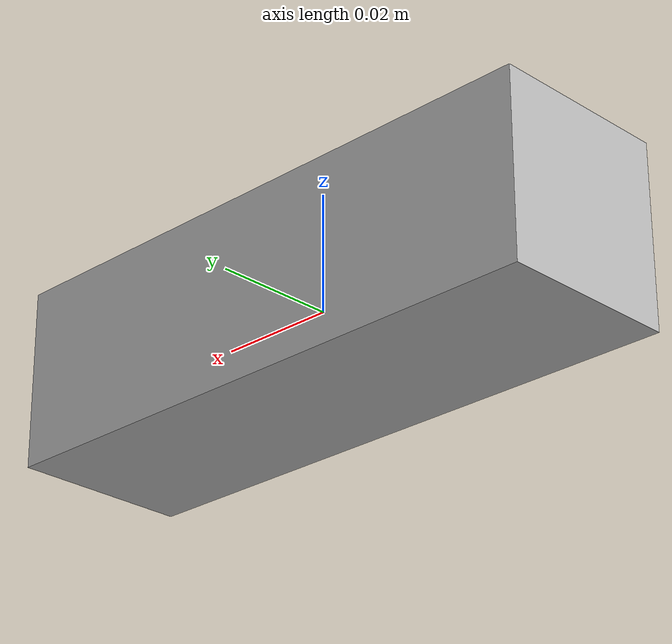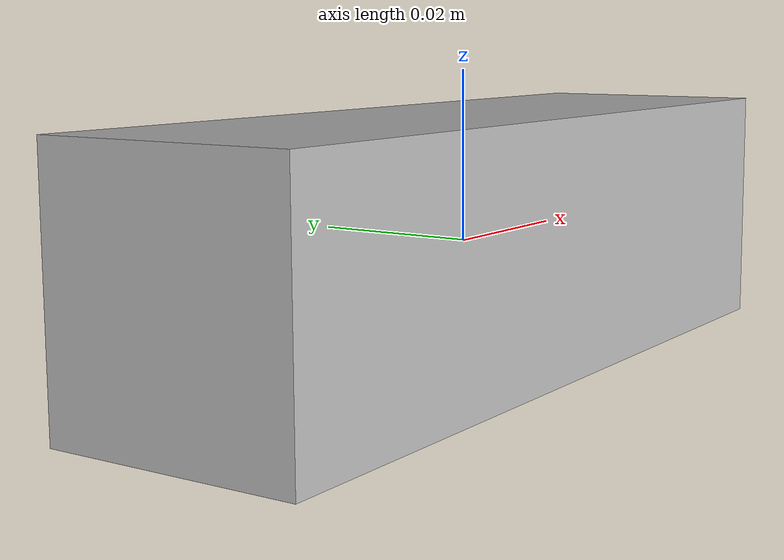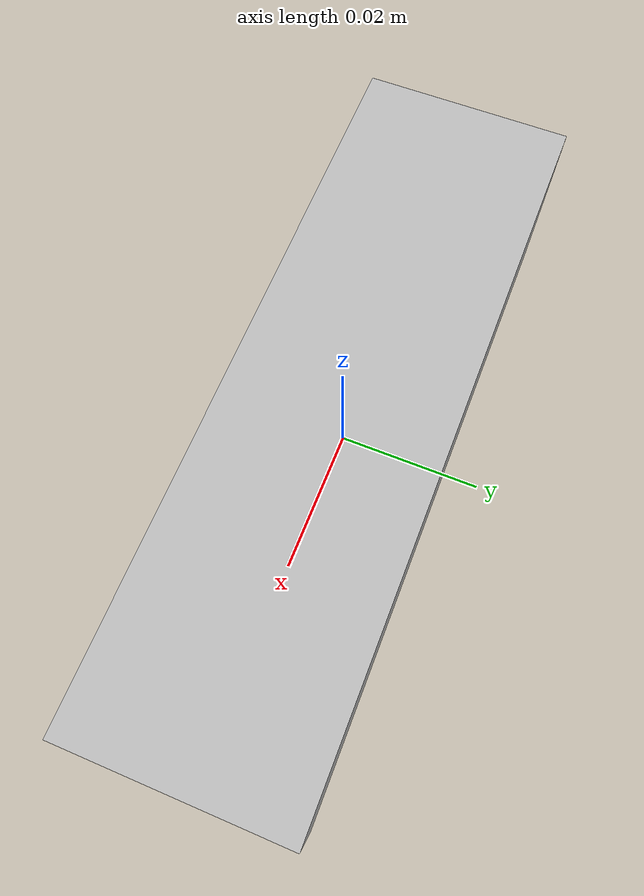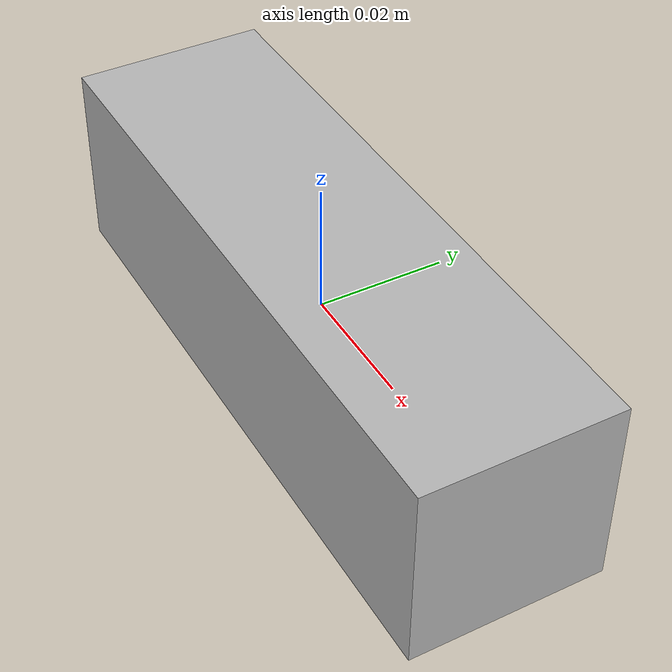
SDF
<?xml version="1.0" ?>
<sdf version="1.6">
  <model name="bumblebee2_like_model">
    <pose>0 0 0 0 0 0</pose>
    <static>true</static>

    <link name="stereo_link">
      <collision name="collision">
        <geometry><box><size>0.10 0.03 0.03</size></box></geometry>
      </collision>
      <visual name="visual">
        <geometry><box><size>0.10 0.03 0.03</size></box></geometry>
      </visual>

      <sensor name="bumblebee2_like_left" type="camera">
        <pose>0 0.06 0 0 0 0</pose>
        <always_on>true</always_on>
        <update_rate>30</update_rate>
        <camera name="bumblebee2_like_left">
          <horizontal_fov>1.222</horizontal_fov>
          <image>
            <width>1024.0</width>
            <height>768.0</height>
            <format>R8G8B8</format>
          </image>
          <clip>
            <near>0.3</near>
            <far>10.0</far>
          </clip>
        </camera>
        <plugin name="bumblebee2_like_left_plugin" filename="libgazebo_ros_camera.so">
          <cameraName>bumblebee2_like_left</cameraName>
          <ros>
            <namespace>/bumblebee2_like/left</namespace>
            <argument>image_raw:=image_raw</argument>
            <argument>camera_info:=camera_info</argument>
          </ros>
          <frame_name>bumblebee2_like_left_optical_frame</frame_name>
          <optical_frame_id>bumblebee2_like_left_optical_frame</optical_frame_id>
          <update_rate>30</update_rate>
        </plugin>
      </sensor>

      <sensor name="bumblebee2_like_right" type="camera">
        <pose>0 -0.06 0 0 0 0</pose>
        <always_on>true</always_on>
        <update_rate>30</update_rate>
        <camera name="bumblebee2_like_right">
          <horizontal_fov>1.222</horizontal_fov>
          <image>
            <width>1024.0</width>
            <height>768.0</height>
            <format>R8G8B8</format>
          </image>
          <clip>
            <near>0.3</near>
            <far>10.0</far>
          </clip>
        </camera>
        <plugin name="bumblebee2_like_right_plugin" filename="libgazebo_ros_camera.so">
          <cameraName>bumblebee2_like_right</cameraName>
          <ros>
            <namespace>/bumblebee2_like/right</namespace>
            <argument>image_raw:=image_raw</argument>
            <argument>camera_info:=camera_info</argument>
          </ros>
          <frame_name>bumblebee2_like_right_optical_frame</frame_name>
          <optical_frame_id>bumblebee2_like_right_optical_frame</optical_frame_id>
          <update_rate>30</update_rate>
        </plugin>
      </sensor>
    </link>
  </model>
</sdf>
